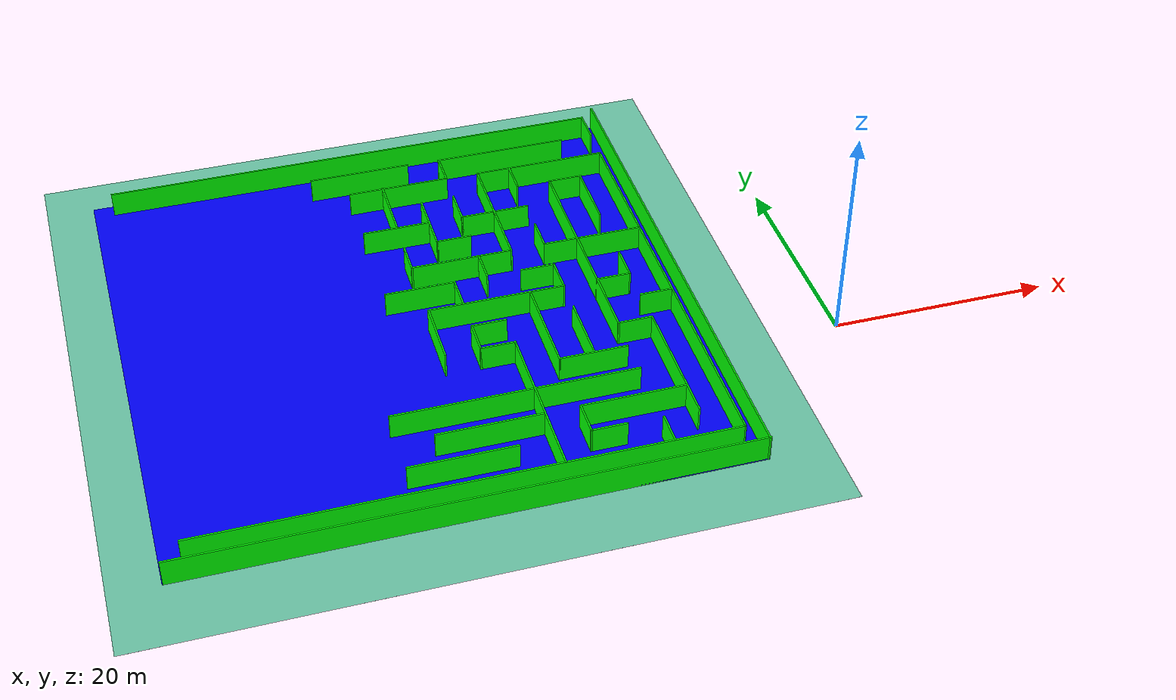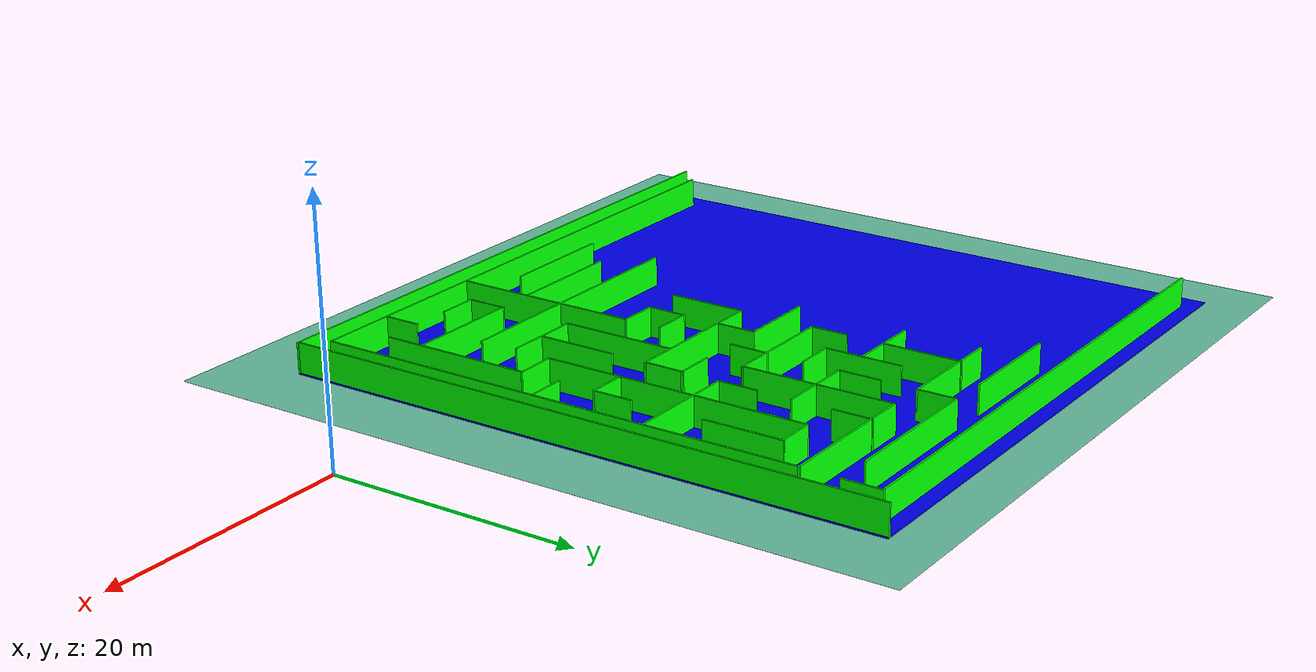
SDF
<sdf version="1.6">
 <world name="default">
  <model name="Maze1">
   <pose>-36.2095 9.65499 0 0 -0 0</pose>
   <link name="Floor_0">
    <collision name="Floor_0_Collision">
     <geometry><box><size>50.0708 49.8915 0.1</size></box></geometry>
     <pose>0 0 0.05 0 -0 0</pose>
    </collision>
    <visual name="Floor_0_Visual">
     <pose>0 0 0.05 0 -0 0</pose>
     <geometry><box><size>50.0708 49.8915 0.1</size></box></geometry>
     <material>
      <script><uri>file://media/materials/scripts/gazebo.material</uri><name>Gazebo/Grey</name></script>
      <ambient>0 0 1 1</ambient>
     </material>
     <meta><layer>1</layer></meta>
    </visual>
    <pose>-0.62393 1.04415 0.001 0 -0 0</pose>
   </link>
   <link name="Wall_0">
    <collision name="Wall_0_Collision">
     <geometry><box><size>60.01 60 0.001</size></box></geometry>
     <pose>0 0 0.0005 0 -0 0</pose>
    </collision>
    <visual name="Wall_0_Visual">
     <pose>0 0 0.0005 0 -0 0</pose>
     <geometry><box><size>60.01 60 0.001</size></box></geometry>
     <material>
      <script><uri>file://media/materials/scripts/gazebo.material</uri><name>Gazebo/Grey</name></script>
      <ambient>0.435294 0.796078 0.67451 1</ambient>
     </material>
     <meta><layer>0</layer></meta>
    </visual>
    <pose>-1e-06 1e-06 0 0 -0 -1.5708</pose>
   </link>
   <link name="Wall_101">
    <collision name="Wall_101_Collision">
     <geometry><box><size>3.25 0.15 2.5</size></box></geometry>
     <pose>0 0 1.25 0 -0 0</pose>
    </collision>
    <visual name="Wall_101_Visual">
     <pose>0 0 1.25 0 -0 0</pose>
     <geometry><box><size>3.25 0.15 2.5</size></box></geometry>
     <material>
      <script><uri>file://media/materials/scripts/gazebo.material</uri><name>Gazebo/Grey</name></script>
      <ambient>0 1 0 1</ambient>
     </material>
     <meta><layer>1</layer></meta>
    </visual>
    <pose>12.0985 2.88137 0.001 0 -0 3.14159</pose>
   </link>
   <link name="Wall_106">
    <collision name="Wall_106_Collision">
     <geometry><box><size>6.5 0.15 2.5</size></box></geometry>
     <pose>0 0 1.25 0 -0 0</pose>
    </collision>
    <visual name="Wall_106_Visual">
     <pose>0 0 1.25 0 -0 0</pose>
     <geometry><box><size>6.5 0.15 2.5</size></box></geometry>
     <material>
      <script><uri>file://media/materials/scripts/gazebo.material</uri><name>Gazebo/Grey</name></script>
      <ambient>0 1 0 1</ambient>
     </material>
     <meta><layer>1</layer></meta>
    </visual>
    <pose>1.17658 2.86678 0.001 0 -0 0</pose>
   </link>
   <link name="Wall_107">
    <collision name="Wall_107_Collision">
     <geometry><box><size>3.25 0.15 2.5</size></box></geometry>
     <pose>0 0 1.25 0 -0 0</pose>
    </collision>
    <visual name="Wall_107_Visual">
     <pose>0 0 1.25 0 -0 0</pose>
     <geometry><box><size>3.25 0.15 2.5</size></box></geometry>
     <material>
      <script><uri>file://media/materials/scripts/gazebo.material</uri><name>Gazebo/Grey</name></script>
      <ambient>0 1 0 1</ambient>
     </material>
     <meta><layer>1</layer></meta>
    </visual>
    <pose>4.35158 1.31678 0.001 0 -0 -1.5708</pose>
   </link>
   <link name="Wall_109">
    <collision name="Wall_109_Collision">
     <geometry><box><size>3.25 0.15 2.5</size></box></geometry>
     <pose>0 0 1.25 0 -0 0</pose>
    </collision>
    <visual name="Wall_109_Visual">
     <pose>0 0 1.25 0 -0 0</pose>
     <geometry><box><size>3.25 0.15 2.5</size></box></geometry>
     <material>
      <script><uri>file://media/materials/scripts/gazebo.material</uri><name>Gazebo/Grey</name></script>
      <ambient>0 1 0 1</ambient>
     </material>
     <meta><layer>1</layer></meta>
    </visual>
    <pose>7.36486 4.40241 0.001 0 -0 -1.5708</pose>
   </link>
   <link name="Wall_112">
    <collision name="Wall_112_Collision">
     <geometry><box><size>9.5 0.15 2.5</size></box></geometry>
     <pose>0 0 1.25 0 -0 0</pose>
    </collision>
    <visual name="Wall_112_Visual">
     <pose>0 0 1.25 0 -0 0</pose>
     <geometry><box><size>9.5 0.15 2.5</size></box></geometry>
     <material>
      <script><uri>file://media/materials/scripts/gazebo.material</uri><name>Gazebo/Grey</name></script>
      <ambient>0 1 0 1</ambient>
     </material>
     <meta><layer>1</layer></meta>
    </visual>
    <pose>-0.406083 -19.0438 0.001 0 -0 0</pose>
   </link>
   <link name="Wall_116">
    <collision name="Wall_116_Collision">
     <geometry><box><size>22 0.15 2.5</size></box></geometry>
     <pose>0 0 1.25 0 -0 0</pose>
    </collision>
    <visual name="Wall_116_Visual">
     <pose>0 0 1.25 0 -0 0</pose>
     <geometry><box><size>22 0.15 2.5</size></box></geometry>
     <material>
      <script><uri>file://media/materials/scripts/gazebo.material</uri><name>Gazebo/Grey</name></script>
      <ambient>0 1 0 1</ambient>
     </material>
     <meta><layer>1</layer></meta>
    </visual>
    <pose>5.80874 -12.7473 0.001 0 -0 0</pose>
   </link>
   <link name="Wall_118">
    <collision name="Wall_118_Collision">
     <geometry><box><size>9.5 0.15 2.5</size></box></geometry>
     <pose>0 0 1.25 0 -0 0</pose>
    </collision>
    <visual name="Wall_118_Visual">
     <pose>0 0 1.25 0 -0 0</pose>
     <geometry><box><size>9.5 0.15 2.5</size></box></geometry>
     <material>
      <script><uri>file://media/materials/scripts/gazebo.material</uri><name>Gazebo/Grey</name></script>
      <ambient>0 1 0 1</ambient>
     </material>
     <meta><layer>1</layer></meta>
    </visual>
    <pose>2.68965 -15.9485 0.001 0 -0 0</pose>
   </link>
   <link name="Wall_12">
    <collision name="Wall_12_Collision">
     <geometry><box><size>46.75 0.15 2.5</size></box></geometry>
     <pose>0 0 1.25 0 -0 0</pose>
    </collision>
    <visual name="Wall_12_Visual">
     <pose>0 0 1.25 0 -0 0</pose>
     <geometry><box><size>46.75 0.15 2.5</size></box></geometry>
     <material>
      <script><uri>file://media/materials/scripts/gazebo.material</uri><name>Gazebo/Grey</name></script>
      <ambient>0 1 0 1</ambient>
     </material>
     <meta><layer>1</layer></meta>
    </visual>
    <pose>-0.4929 -21.9737 0.001 0 -0 0</pose>
   </link>
   <link name="Wall_120">
    <collision name="Wall_120_Collision">
     <geometry><box><size>15.5 0.15 2.5</size></box></geometry>
     <pose>0 0 1.25 0 -0 0</pose>
    </collision>
    <visual name="Wall_120_Visual">
     <pose>0 0 1.25 0 -0 0</pose>
     <geometry><box><size>15.5 0.15 2.5</size></box></geometry>
     <material>
      <script><uri>file://media/materials/scripts/gazebo.material</uri><name>Gazebo/Grey</name></script>
      <ambient>0 1 0 1</ambient>
     </material>
     <meta><layer>1</layer></meta>
    </visual>
    <pose>7.40738 -14.2188 0.001 0 -0 1.5708</pose>
   </link>
   <link name="Wall_121">
    <collision name="Wall_121_Collision">
     <geometry><box><size>3.25 0.15 2.5</size></box></geometry>
     <pose>0 0 1.25 0 -0 0</pose>
    </collision>
    <visual name="Wall_121_Visual">
     <pose>0 0 1.25 0 -0 0</pose>
     <geometry><box><size>3.25 0.15 2.5</size></box></geometry>
     <material>
      <script><uri>file://media/materials/scripts/gazebo.material</uri><name>Gazebo/Grey</name></script>
      <ambient>0 1 0 1</ambient>
     </material>
     <meta><layer>1</layer></meta>
    </visual>
    <pose>5.85738 -6.54376 0.001 0 -0 3.14159</pose>
   </link>
   <link name="Wall_122">
    <collision name="Wall_122_Collision">
     <geometry><box><size>3.25 0.15 2.5</size></box></geometry>
     <pose>0 0 1.25 0 -0 0</pose>
    </collision>
    <visual name="Wall_122_Visual">
     <pose>0 0 1.25 0 -0 0</pose>
     <geometry><box><size>3.25 0.15 2.5</size></box></geometry>
     <material>
      <script><uri>file://media/materials/scripts/gazebo.material</uri><name>Gazebo/Grey</name></script>
      <ambient>0 1 0 1</ambient>
     </material>
     <meta><layer>1</layer></meta>
    </visual>
    <pose>4.30738 -4.99376 0.001 0 -0 1.5708</pose>
   </link>
   <link name="Wall_125">
    <collision name="Wall_125_Collision">
     <geometry><box><size>3.25 0.15 2.5</size></box></geometry>
     <pose>0 0 1.25 0 -0 0</pose>
    </collision>
    <visual name="Wall_125_Visual">
     <pose>0 0 1.25 0 -0 0</pose>
     <geometry><box><size>3.25 0.15 2.5</size></box></geometry>
     <material>
      <script><uri>file://media/materials/scripts/gazebo.material</uri><name>Gazebo/Grey</name></script>
      <ambient>0 1 0 1</ambient>
     </material>
     <meta><layer>1</layer></meta>
    </visual>
    <pose>5.85738 -3.44376 0.001 0 -0 0</pose>
   </link>
   <link name="Wall_127">
    <collision name="Wall_127_Collision">
     <geometry><box><size>9.5 0.15 2.5</size></box></geometry>
     <pose>0 0 1.25 0 -0 0</pose>
    </collision>
    <visual name="Wall_127_Visual">
     <pose>0 0 1.25 0 -0 0</pose>
     <geometry><box><size>9.5 0.15 2.5</size></box></geometry>
     <material>
      <script><uri>file://media/materials/scripts/gazebo.material</uri><name>Gazebo/Grey</name></script>
      <ambient>0 1 0 1</ambient>
     </material>
     <meta><layer>1</layer></meta>
    </visual>
    <pose>10.4679 -5.03935 0.001 0 -0 -1.5708</pose>
   </link>
   <link name="Wall_128">
    <collision name="Wall_128_Collision">
     <geometry><box><size>6.25 0.15 2.5</size></box></geometry>
     <pose>0 0 1.25 0 -0 0</pose>
    </collision>
    <visual name="Wall_128_Visual">
     <pose>0 0 1.25 0 -0 0</pose>
     <geometry><box><size>6.25 0.15 2.5</size></box></geometry>
     <material>
      <script><uri>file://media/materials/scripts/gazebo.material</uri><name>Gazebo/Grey</name></script>
      <ambient>0 1 0 1</ambient>
     </material>
     <meta><layer>1</layer></meta>
    </visual>
    <pose>13.5179 -9.71435 0.001 0 -0 0</pose>
   </link>
   <link name="Wall_13">
    <collision name="Wall_13_Collision">
     <geometry><box><size>40.5 0.15 2.5</size></box></geometry>
     <pose>0 0 1.25 0 -0 0</pose>
    </collision>
    <visual name="Wall_13_Visual">
     <pose>0 0 1.25 0 -0 0</pose>
     <geometry><box><size>40.5 0.15 2.5</size></box></geometry>
     <material>
      <script><uri>file://media/materials/scripts/gazebo.material</uri><name>Gazebo/Grey</name></script>
      <ambient>0 1 0 1</ambient>
     </material>
     <meta><layer>1</layer></meta>
    </visual>
    <pose>22.8071 -1.7987 0.001 0 -0 1.5708</pose>
   </link>
   <link name="Wall_130">
    <collision name="Wall_130_Collision">
     <geometry><box><size>6.5 0.15 2.5</size></box></geometry>
     <pose>0 0 1.25 0 -0 0</pose>
    </collision>
    <visual name="Wall_130_Visual">
     <pose>0 0 1.25 0 -0 0</pose>
     <geometry><box><size>6.5 0.15 2.5</size></box></geometry>
     <material>
      <script><uri>file://media/materials/scripts/gazebo.material</uri><name>Gazebo/Grey</name></script>
      <ambient>0 1 0 1</ambient>
     </material>
     <meta><layer>1</layer></meta>
    </visual>
    <pose>13.5988 -6.52955 0.001 0 -0 -1.5708</pose>
   </link>
   <link name="Wall_132">
    <collision name="Wall_132_Collision">
     <geometry><box><size>3.25 0.15 2.5</size></box></geometry>
     <pose>0 0 1.25 0 -0 0</pose>
    </collision>
    <visual name="Wall_132_Visual">
     <pose>0 0 1.25 0 -0 0</pose>
     <geometry><box><size>3.25 0.15 2.5</size></box></geometry>
     <material>
      <script><uri>file://media/materials/scripts/gazebo.material</uri><name>Gazebo/Grey</name></script>
      <ambient>0 1 0 1</ambient>
     </material>
     <meta><layer>1</layer></meta>
    </visual>
    <pose>12.0179 -18.984 0.001 0 -0 3.14159</pose>
   </link>
   <link name="Wall_133">
    <collision name="Wall_133_Collision">
     <geometry><box><size>3.25 0.15 2.5</size></box></geometry>
     <pose>0 0 1.25 0 -0 0</pose>
    </collision>
    <visual name="Wall_133_Visual">
     <pose>0 0 1.25 0 -0 0</pose>
     <geometry><box><size>3.25 0.15 2.5</size></box></geometry>
     <material>
      <script><uri>file://media/materials/scripts/gazebo.material</uri><name>Gazebo/Grey</name></script>
      <ambient>0 1 0 1</ambient>
     </material>
     <meta><layer>1</layer></meta>
    </visual>
    <pose>10.4679 -17.434 0.001 0 -0 1.5708</pose>
   </link>
   <link name="Wall_134">
    <collision name="Wall_134_Collision">
     <geometry><box><size>9.5 0.15 2.5</size></box></geometry>
     <pose>0 0 1.25 0 -0 0</pose>
    </collision>
    <visual name="Wall_134_Visual">
     <pose>0 0 1.25 0 -0 0</pose>
     <geometry><box><size>9.5 0.15 2.5</size></box></geometry>
     <material>
      <script><uri>file://media/materials/scripts/gazebo.material</uri><name>Gazebo/Grey</name></script>
      <ambient>0 1 0 1</ambient>
     </material>
     <meta><layer>1</layer></meta>
    </visual>
    <pose>15.1429 -15.884 0.001 0 -0 0</pose>
   </link>
   <link name="Wall_136">
    <collision name="Wall_136_Collision">
     <geometry><box><size>3 0.15 2.5</size></box></geometry>
     <pose>0 0 1.25 0 -0 0</pose>
    </collision>
    <visual name="Wall_136_Visual">
     <pose>0 0 1.25 0 -0 0</pose>
     <geometry><box><size>3 0.15 2.5</size></box></geometry>
     <material>
      <script><uri>file://media/materials/scripts/gazebo.material</uri><name>Gazebo/Grey</name></script>
      <ambient>0 1 0 1</ambient>
     </material>
     <meta><layer>1</layer></meta>
    </visual>
    <pose>16.7235 -20.5053 0.001 0 -0 1.5708</pose>
   </link>
   <link name="Wall_138">
    <collision name="Wall_138_Collision">
     <geometry><box><size>12.5 0.15 2.5</size></box></geometry>
     <pose>0 0 1.25 0 -0 0</pose>
    </collision>
    <visual name="Wall_138_Visual">
     <pose>0 0 1.25 0 -0 0</pose>
     <geometry><box><size>12.5 0.15 2.5</size></box></geometry>
     <material>
      <script><uri>file://media/materials/scripts/gazebo.material</uri><name>Gazebo/Grey</name></script>
      <ambient>0 1 0 1</ambient>
     </material>
     <meta><layer>1</layer></meta>
    </visual>
    <pose>19.8544 -12.7651 0.001 0 -0 1.5708</pose>
   </link>
   <link name="Wall_139">
    <collision name="Wall_139_Collision">
     <geometry><box><size>3.25 0.15 2.5</size></box></geometry>
     <pose>0 0 1.25 0 -0 0</pose>
    </collision>
    <visual name="Wall_139_Visual">
     <pose>0 0 1.25 0 -0 0</pose>
     <geometry><box><size>3.25 0.15 2.5</size></box></geometry>
     <material>
      <script><uri>file://media/materials/scripts/gazebo.material</uri><name>Gazebo/Grey</name></script>
      <ambient>0 1 0 1</ambient>
     </material>
     <meta><layer>1</layer></meta>
    </visual>
    <pose>18.3044 -6.59006 0.001 0 -0 3.14159</pose>
   </link>
   <link name="Wall_14">
    <collision name="Wall_14_Collision">
     <geometry><box><size>12.5 0.15 2.5</size></box></geometry>
     <pose>0 0 1.25 0 -0 0</pose>
    </collision>
    <visual name="Wall_14_Visual">
     <pose>0 0 1.25 0 -0 0</pose>
     <geometry><box><size>12.5 0.15 2.5</size></box></geometry>
     <material>
      <script><uri>file://media/materials/scripts/gazebo.material</uri><name>Gazebo/Grey</name></script>
      <ambient>0 1 0 1</ambient>
     </material>
     <meta><layer>1</layer></meta>
    </visual>
    <pose>16.6321 18.3763 0.001 0 -0 3.14159</pose>
   </link>
   <link name="Wall_140">
    <collision name="Wall_140_Collision">
     <geometry><box><size>22 0.15 2.5</size></box></geometry>
     <pose>0 0 1.25 0 -0 0</pose>
    </collision>
    <visual name="Wall_140_Visual">
     <pose>0 0 1.25 0 -0 0</pose>
     <geometry><box><size>22 0.15 2.5</size></box></geometry>
     <material>
      <script><uri>file://media/materials/scripts/gazebo.material</uri><name>Gazebo/Grey</name></script>
      <ambient>0 1 0 1</ambient>
     </material>
     <meta><layer>1</layer></meta>
    </visual>
    <pose>16.7544 4.33494 0.001 0 -0 1.5708</pose>
   </link>
   <link name="Wall_141">
    <collision name="Wall_141_Collision">
     <geometry><box><size>3.25 0.15 2.5</size></box></geometry>
     <pose>0 0 1.25 0 -0 0</pose>
    </collision>
    <visual name="Wall_141_Visual">
     <pose>0 0 1.25 0 -0 0</pose>
     <geometry><box><size>3.25 0.15 2.5</size></box></geometry>
     <material>
      <script><uri>file://media/materials/scripts/gazebo.material</uri><name>Gazebo/Grey</name></script>
      <ambient>0 1 0 1</ambient>
     </material>
     <meta><layer>1</layer></meta>
    </visual>
    <pose>18.3044 15.2599 0.001 0 -0 0</pose>
   </link>
   <link name="Wall_142">
    <collision name="Wall_142_Collision">
     <geometry><box><size>6.5 0.15 2.5</size></box></geometry>
     <pose>0 0 1.25 0 -0 0</pose>
    </collision>
    <visual name="Wall_142_Visual">
     <pose>0 0 1.25 0 -0 0</pose>
     <geometry><box><size>6.5 0.15 2.5</size></box></geometry>
     <material>
      <script><uri>file://media/materials/scripts/gazebo.material</uri><name>Gazebo/Grey</name></script>
      <ambient>0 1 0 1</ambient>
     </material>
     <meta><layer>1</layer></meta>
    </visual>
    <pose>19.8544 12.0849 0.001 0 -0 -1.5708</pose>
   </link>
   <link name="Wall_144">
    <collision name="Wall_144_Collision">
     <geometry><box><size>3.25 0.15 2.5</size></box></geometry>
     <pose>0 0 1.25 0 -0 0</pose>
    </collision>
    <visual name="Wall_144_Visual">
     <pose>0 0 1.25 0 -0 0</pose>
     <geometry><box><size>3.25 0.15 2.5</size></box></geometry>
     <material>
      <script><uri>file://media/materials/scripts/gazebo.material</uri><name>Gazebo/Grey</name></script>
      <ambient>0 1 0 1</ambient>
     </material>
     <meta><layer>1</layer></meta>
    </visual>
    <pose>19.8424 1.28446 0.001 0 -0 -1.5708</pose>
   </link>
   <link name="Wall_145">
    <collision name="Wall_145_Collision">
     <geometry><box><size>3.25 0.15 2.5</size></box></geometry>
     <pose>0 0 1.25 0 -0 0</pose>
    </collision>
    <visual name="Wall_145_Visual">
     <pose>0 0 1.25 0 -0 0</pose>
     <geometry><box><size>3.25 0.15 2.5</size></box></geometry>
     <material>
      <script><uri>file://media/materials/scripts/gazebo.material</uri><name>Gazebo/Grey</name></script>
      <ambient>0 1 0 1</ambient>
     </material>
     <meta><layer>1</layer></meta>
    </visual>
    <pose>18.2924 -0.265535 0.001 0 -0 3.14159</pose>
   </link>
   <link name="Wall_147">
    <collision name="Wall_147_Collision">
     <geometry><box><size>3 0.15 2.5</size></box></geometry>
     <pose>0 0 1.25 0 -0 0</pose>
    </collision>
    <visual name="Wall_147_Visual">
     <pose>0 0 1.25 0 -0 0</pose>
     <geometry><box><size>3 0.15 2.5</size></box></geometry>
     <material>
      <script><uri>file://media/materials/scripts/gazebo.material</uri><name>Gazebo/Grey</name></script>
      <ambient>0 1 0 1</ambient>
     </material>
     <meta><layer>1</layer></meta>
    </visual>
    <pose>21.2876 -3.40074 0.001 0 -0 0</pose>
   </link>
   <link name="Wall_149">
    <collision name="Wall_149_Collision">
     <geometry><box><size>3.25 0.15 2.5</size></box></geometry>
     <pose>0 0 1.25 0 -0 0</pose>
    </collision>
    <visual name="Wall_149_Visual">
     <pose>0 0 1.25 0 -0 0</pose>
     <geometry><box><size>3.25 0.15 2.5</size></box></geometry>
     <material>
      <script><uri>file://media/materials/scripts/gazebo.material</uri><name>Gazebo/Grey</name></script>
      <ambient>0 1 0 1</ambient>
     </material>
     <meta><layer>1</layer></meta>
    </visual>
    <pose>13.6187 7.53453 0.001 0 -0 -1.5708</pose>
   </link>
   <link name="Wall_15">
    <collision name="Wall_15_Collision">
     <geometry><box><size>12.633 0.15 2.5</size></box></geometry>
     <pose>0 0 1.25 0 -0 0</pose>
    </collision>
    <visual name="Wall_15_Visual">
     <pose>0 0 1.25 0 -0 0</pose>
     <geometry><box><size>12.633 0.15 2.5</size></box></geometry>
     <material>
      <script><uri>file://media/materials/scripts/gazebo.material</uri><name>Gazebo/Grey</name></script>
      <ambient>0 1 0 1</ambient>
     </material>
     <meta><layer>1</layer></meta>
    </visual>
    <pose>10.4571 12.1348 0.001 0 -0 -1.5708</pose>
   </link>
   <link name="Wall_150">
    <collision name="Wall_150_Collision">
     <geometry><box><size>9.25 0.15 2.5</size></box></geometry>
     <pose>0 0 1.25 0 -0 0</pose>
    </collision>
    <visual name="Wall_150_Visual">
     <pose>0 0 1.25 0 -0 0</pose>
     <geometry><box><size>9.25 0.15 2.5</size></box></geometry>
     <material>
      <script><uri>file://media/materials/scripts/gazebo.material</uri><name>Gazebo/Grey</name></script>
      <ambient>0 1 0 1</ambient>
     </material>
     <meta><layer>1</layer></meta>
    </visual>
    <pose>18.1687 5.98453 0.001 0 -0 0</pose>
   </link>
   <link name="Wall_16">
    <collision name="Wall_16_Collision">
     <geometry><box><size>9.5 0.15 2.5</size></box></geometry>
     <pose>0 0 1.25 0 -0 0</pose>
    </collision>
    <visual name="Wall_16_Visual">
     <pose>0 0 1.25 0 -0 0</pose>
     <geometry><box><size>9.5 0.15 2.5</size></box></geometry>
     <material>
      <script><uri>file://media/materials/scripts/gazebo.material</uri><name>Gazebo/Grey</name></script>
      <ambient>0 1 0 1</ambient>
     </material>
     <meta><layer>1</layer></meta>
    </visual>
    <pose>5.7821 5.9199 0.001 0 -0 3.14159</pose>
   </link>
   <link name="Wall_160">
    <collision name="Wall_160_Collision">
     <geometry><box><size>6.5 0.15 2.5</size></box></geometry>
     <pose>0 0 1.25 0 -0 0</pose>
    </collision>
    <visual name="Wall_160_Visual">
     <pose>0 0 1.25 0 -0 0</pose>
     <geometry><box><size>6.5 0.15 2.5</size></box></geometry>
     <material>
      <script><uri>file://media/materials/scripts/gazebo.material</uri><name>Gazebo/Grey</name></script>
      <ambient>0 1 0 1</ambient>
     </material>
     <meta><layer>1</layer></meta>
    </visual>
    <pose>1.16348 15.2995 0.001 0 -0 1.5708</pose>
   </link>
   <link name="Wall_164">
    <collision name="Wall_164_Collision">
     <geometry><box><size>6.37236 0.15 2.5</size></box></geometry>
     <pose>0 0 1.25 0 -0 0</pose>
    </collision>
    <visual name="Wall_164_Visual">
     <pose>0 0 1.25 0 -0 0</pose>
     <geometry><box><size>6.37236 0.15 2.5</size></box></geometry>
     <material>
      <script><uri>file://media/materials/scripts/gazebo.material</uri><name>Gazebo/Grey</name></script>
      <ambient>0 1 0 1</ambient>
     </material>
     <meta><layer>1</layer></meta>
    </visual>
    <pose>4.2225 12.1641 0.001 0 -0 -1.5708</pose>
   </link>
   <link name="Wall_165">
    <collision name="Wall_165_Collision">
     <geometry><box><size>3.25 0.15 2.5</size></box></geometry>
     <pose>0 0 1.25 0 -0 0</pose>
    </collision>
    <visual name="Wall_165_Visual">
     <pose>0 0 1.25 0 -0 0</pose>
     <geometry><box><size>3.25 0.15 2.5</size></box></geometry>
     <material>
      <script><uri>file://media/materials/scripts/gazebo.material</uri><name>Gazebo/Grey</name></script>
      <ambient>0 1 0 1</ambient>
     </material>
     <meta><layer>1</layer></meta>
    </visual>
    <pose>5.80309 9.05292 0.001 0 -0 0</pose>
   </link>
   <link name="Wall_167">
    <collision name="Wall_167_Collision">
     <geometry><box><size>6.25 0.15 2.5</size></box></geometry>
     <pose>0 0 1.25 0 -0 0</pose>
    </collision>
    <visual name="Wall_167_Visual">
     <pose>0 0 1.25 0 -0 0</pose>
     <geometry><box><size>6.25 0.15 2.5</size></box></geometry>
     <material>
      <script><uri>file://media/materials/scripts/gazebo.material</uri><name>Gazebo/Grey</name></script>
      <ambient>0 1 0 1</ambient>
     </material>
     <meta><layer>1</layer></meta>
    </visual>
    <pose>1.06978 12.0785 0.001 0 -0 0</pose>
   </link>
   <link name="Wall_169">
    <collision name="Wall_169_Collision">
     <geometry><box><size>3.5 0.15 2.5</size></box></geometry>
     <pose>0 0 1.25 0 -0 0</pose>
    </collision>
    <visual name="Wall_169_Visual">
     <pose>0 0 1.25 0 -0 0</pose>
     <geometry><box><size>3.5 0.15 2.5</size></box></geometry>
     <material>
      <script><uri>file://media/materials/scripts/gazebo.material</uri><name>Gazebo/Grey</name></script>
      <ambient>0 1 0 1</ambient>
     </material>
     <meta><layer>1</layer></meta>
    </visual>
    <pose>7.34271 13.7226 0.001 0 -0 -1.5708</pose>
   </link>
   <link name="Wall_17">
    <collision name="Wall_17_Collision">
     <geometry><box><size>3.133 0.15 2.5</size></box></geometry>
     <pose>0 0 1.25 0 -0 0</pose>
    </collision>
    <visual name="Wall_17_Visual">
     <pose>0 0 1.25 0 -0 0</pose>
     <geometry><box><size>3.133 0.15 2.5</size></box></geometry>
     <material>
      <script><uri>file://media/materials/scripts/gazebo.material</uri><name>Gazebo/Grey</name></script>
      <ambient>0 1 0 1</ambient>
     </material>
     <meta><layer>1</layer></meta>
    </visual>
    <pose>1.1071 7.3848 0.001 0 -0 1.5708</pose>
   </link>
   <link name="Wall_170">
    <collision name="Wall_170_Collision">
     <geometry><box><size>6.5 0.15 2.5</size></box></geometry>
     <pose>0 0 1.25 0 -0 0</pose>
    </collision>
    <visual name="Wall_170_Visual">
     <pose>0 0 1.25 0 -0 0</pose>
     <geometry><box><size>6.5 0.15 2.5</size></box></geometry>
     <material>
      <script><uri>file://media/materials/scripts/gazebo.material</uri><name>Gazebo/Grey</name></script>
      <ambient>0 1 0 1</ambient>
     </material>
     <meta><layer>1</layer></meta>
    </visual>
    <pose>10.5177 12.0476 0.001 0 -0 0</pose>
   </link>
   <link name="Wall_172">
    <collision name="Wall_172_Collision">
     <geometry><box><size>3.25 0.15 2.5</size></box></geometry>
     <pose>0 0 1.25 0 -0 0</pose>
    </collision>
    <visual name="Wall_172_Visual">
     <pose>0 0 1.25 0 -0 0</pose>
     <geometry><box><size>3.25 0.15 2.5</size></box></geometry>
     <material>
      <script><uri>file://media/materials/scripts/gazebo.material</uri><name>Gazebo/Grey</name></script>
      <ambient>0 1 0 1</ambient>
     </material>
     <meta><layer>1</layer></meta>
    </visual>
    <pose>13.6137 16.8761 0.001 0 -0 -1.5708</pose>
   </link>
   <link name="Wall_174">
    <collision name="Wall_174_Collision">
     <geometry><box><size>12.5 0.15 2.5</size></box></geometry>
     <pose>0 0 1.25 0 -0 0</pose>
    </collision>
    <visual name="Wall_174_Visual">
     <pose>0 0 1.25 0 -0 0</pose>
     <geometry><box><size>12.5 0.15 2.5</size></box></geometry>
     <material>
      <script><uri>file://media/materials/scripts/gazebo.material</uri><name>Gazebo/Grey</name></script>
      <ambient>0 1 0 1</ambient>
     </material>
     <meta><layer>1</layer></meta>
    </visual>
    <pose>13.5567 21.5157 0.001 0 -0 3.14159</pose>
   </link>
   <link name="Wall_175">
    <collision name="Wall_175_Collision">
     <geometry><box><size>3.25 0.15 2.5</size></box></geometry>
     <pose>0 0 1.25 0 -0 0</pose>
    </collision>
    <visual name="Wall_175_Visual">
     <pose>0 0 1.25 0 -0 0</pose>
     <geometry><box><size>3.25 0.15 2.5</size></box></geometry>
     <material>
      <script><uri>file://media/materials/scripts/gazebo.material</uri><name>Gazebo/Grey</name></script>
      <ambient>0 1 0 1</ambient>
     </material>
     <meta><layer>1</layer></meta>
    </visual>
    <pose>7.38175 19.9657 0.001 0 -0 -1.5708</pose>
   </link>
   <link name="Wall_176">
    <collision name="Wall_176_Collision">
     <geometry><box><size>9.5 0.15 2.5</size></box></geometry>
     <pose>0 0 1.25 0 -0 0</pose>
    </collision>
    <visual name="Wall_176_Visual">
     <pose>0 0 1.25 0 -0 0</pose>
     <geometry><box><size>9.5 0.15 2.5</size></box></geometry>
     <material>
      <script><uri>file://media/materials/scripts/gazebo.material</uri><name>Gazebo/Grey</name></script>
      <ambient>0 1 0 1</ambient>
     </material>
     <meta><layer>1</layer></meta>
    </visual>
    <pose>2.70675 18.4157 0.001 0 -0 3.14159</pose>
   </link>
   <link name="Wall_181">
    <collision name="Wall_181_Collision">
     <geometry><box><size>9.5 0.15 2.5</size></box></geometry>
     <pose>0 0 1.25 0 -0 0</pose>
    </collision>
    <visual name="Wall_181_Visual">
     <pose>0 0 1.25 0 -0 0</pose>
     <geometry><box><size>9.5 0.15 2.5</size></box></geometry>
     <material>
      <script><uri>file://media/materials/scripts/gazebo.material</uri><name>Gazebo/Grey</name></script>
      <ambient>0 1 0 1</ambient>
     </material>
     <meta><layer>1</layer></meta>
    </visual>
    <pose>-0.421907 21.6075 0.001 0 -0 3.14159</pose>
   </link>
   <link name="Wall_185">
    <collision name="Wall_185_Collision">
     <geometry><box><size>50 0.15 2.5</size></box></geometry>
     <pose>0 0 1.25 0 -0 0</pose>
    </collision>
    <visual name="Wall_185_Visual">
     <pose>0 0 1.25 0 -0 0</pose>
     <geometry><box><size>50 0.15 2.5</size></box></geometry>
     <material>
      <script><uri>file://media/materials/scripts/gazebo.material</uri><name>Gazebo/Grey</name></script>
      <ambient>0 1 0 1</ambient>
     </material>
     <meta><layer>1</layer></meta>
    </visual>
    <pose>-0.588552 -23.8266 0.001 0 -0 0</pose>
   </link>
   <link name="Wall_186">
    <collision name="Wall_186_Collision">
     <geometry><box><size>49.8916 0.15 2.5</size></box></geometry>
     <pose>0 0 1.25 0 -0 0</pose>
    </collision>
    <visual name="Wall_186_Visual">
     <pose>0 0 1.25 0 -0 0</pose>
     <geometry><box><size>49.8916 0.15 2.5</size></box></geometry>
     <material>
      <script><uri>file://media/materials/scripts/gazebo.material</uri><name>Gazebo/Grey</name></script>
      <ambient>0 1 0 1</ambient>
     </material>
     <meta><layer>1</layer></meta>
    </visual>
    <pose>24.2657 1.04415 0.001 0 -0 1.5708</pose>
   </link>
   <link name="Wall_2">
    <collision name="Wall_2_Collision">
     <geometry><box><size>0.159962 0.15 0.001</size></box></geometry>
     <pose>0 0 0.0005 0 -0 0</pose>
    </collision>
    <visual name="Wall_2_Visual">
     <pose>0 0 0.0005 0 -0 0</pose>
     <geometry><box><size>0.159962 0.15 0.001</size></box></geometry>
     <material>
      <script><uri>file://media/materials/scripts/gazebo.material</uri><name>Gazebo/Grey</name></script>
      <ambient>0.435294 0.796078 0.67451 1</ambient>
     </material>
     <meta><layer>1</layer></meta>
    </visual>
    <pose>-0.650993 1.05733 0.001 0 -0 -1.5708</pose>
   </link>
   <link name="Wall_3">
    <collision name="Wall_3_Collision">
     <geometry><box><size>46.75 0.15 2.5</size></box></geometry>
     <pose>0 0 1.25 0 -0 0</pose>
    </collision>
    <visual name="Wall_3_Visual">
     <pose>0 0 1.25 0 -0 0</pose>
     <geometry><box><size>46.75 0.15 2.5</size></box></geometry>
     <material>
      <script><uri>file://media/materials/scripts/gazebo.material</uri><name>Gazebo/Grey</name></script>
      <ambient>0 1 0 1</ambient>
     </material>
     <meta><layer>1</layer></meta>
    </visual>
    <pose>-0.422143 24.6737 0.001 0 -0 0</pose>
   </link>
   <link name="Wall_89">
    <collision name="Wall_89_Collision">
     <geometry><box><size>6.3564 0.15 2.5</size></box></geometry>
     <pose>0 0 1.25 0 -0 0</pose>
    </collision>
    <visual name="Wall_89_Visual">
     <pose>0 0 1.25 0 -0 0</pose>
     <geometry><box><size>6.3564 0.15 2.5</size></box></geometry>
     <material>
      <script><uri>file://media/materials/scripts/gazebo.material</uri><name>Gazebo/Grey</name></script>
      <ambient>0 1 0 1</ambient>
     </material>
     <meta><layer>1</layer></meta>
    </visual>
    <pose>1.16545 -3.42823 0.001 0 -0 1.5708</pose>
   </link>
   <link name="Wall_9">
    <collision name="Wall_9_Collision">
     <geometry><box><size>3.25 0.15 2.5</size></box></geometry>
     <pose>0 0 1.25 0 -0 0</pose>
    </collision>
    <visual name="Wall_9_Visual">
     <pose>0 0 1.25 0 -0 0</pose>
     <geometry><box><size>3.25 0.15 2.5</size></box></geometry>
     <material>
      <script><uri>file://media/materials/scripts/gazebo.material</uri><name>Gazebo/Grey</name></script>
      <ambient>0 1 0 1</ambient>
     </material>
     <meta><layer>1</layer></meta>
    </visual>
    <pose>22.8779 23.1237 0.001 0 -0 -1.5708</pose>
   </link>
   <link name="Wall_98">
    <collision name="Wall_98_Collision">
     <geometry><box><size>12.633 0.15 2.5</size></box></geometry>
     <pose>0 0 1.25 0 -0 0</pose>
    </collision>
    <visual name="Wall_98_Visual">
     <pose>0 0 1.25 0 -0 0</pose>
     <geometry><box><size>12.633 0.15 2.5</size></box></geometry>
     <material>
      <script><uri>file://media/materials/scripts/gazebo.material</uri><name>Gazebo/Grey</name></script>
      <ambient>0 1 0 1</ambient>
     </material>
     <meta><layer>1</layer></meta>
    </visual>
    <pose>7.40695 -0.325029 0.001 0 -0 0</pose>
   </link>
   <link name="Wall_99">
    <collision name="Wall_99_Collision">
     <geometry><box><size>3.3564 0.15 2.5</size></box></geometry>
     <pose>0 0 1.25 0 -0 0</pose>
    </collision>
    <visual name="Wall_99_Visual">
     <pose>0 0 1.25 0 -0 0</pose>
     <geometry><box><size>3.3564 0.15 2.5</size></box></geometry>
     <material>
      <script><uri>file://media/materials/scripts/gazebo.material</uri><name>Gazebo/Grey</name></script>
      <ambient>0 1 0 1</ambient>
     </material>
     <meta><layer>1</layer></meta>
    </visual>
    <pose>13.6219 1.27817 0.001 0 -0 1.5708</pose>
   </link>
   <static>1</static>
  </model>
 </world>
</sdf>
